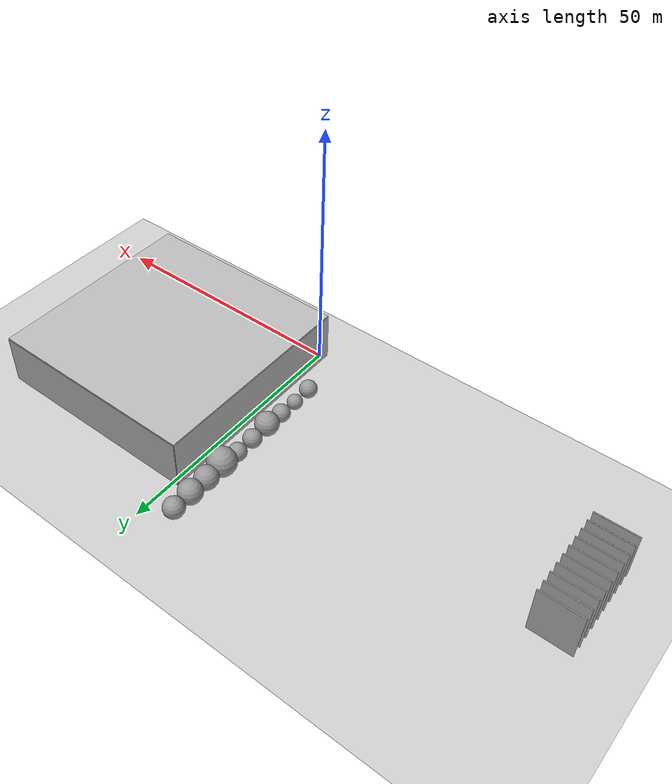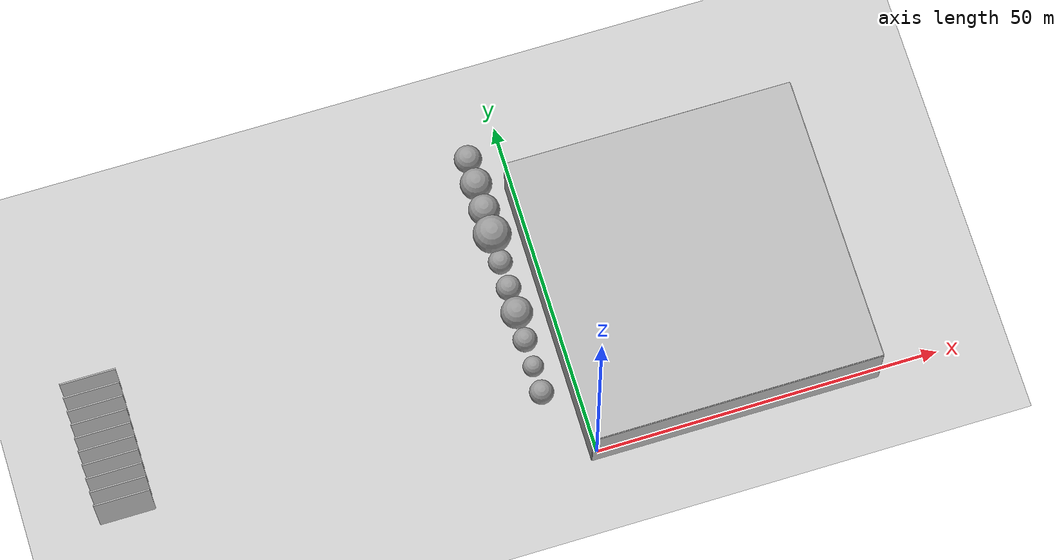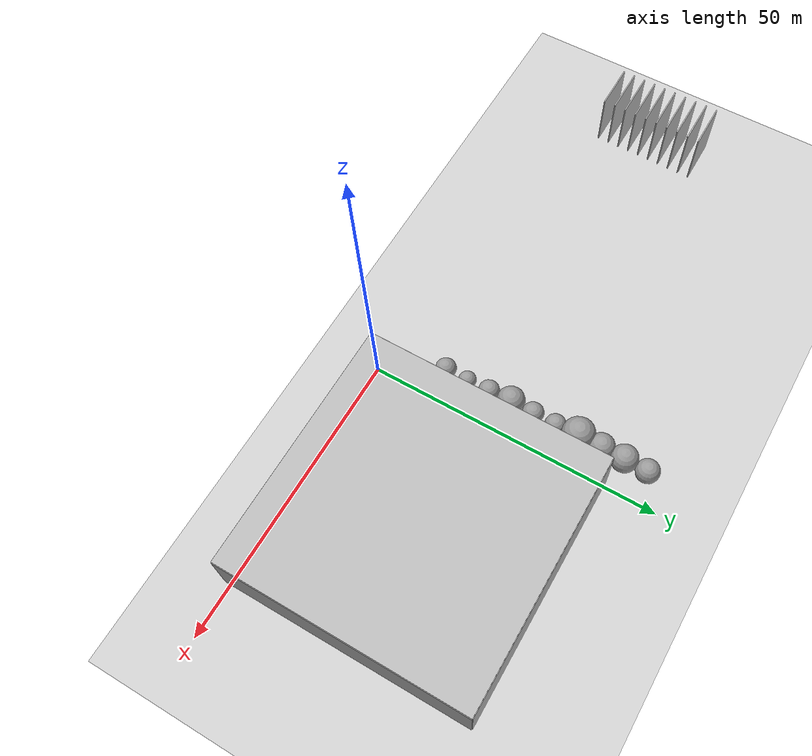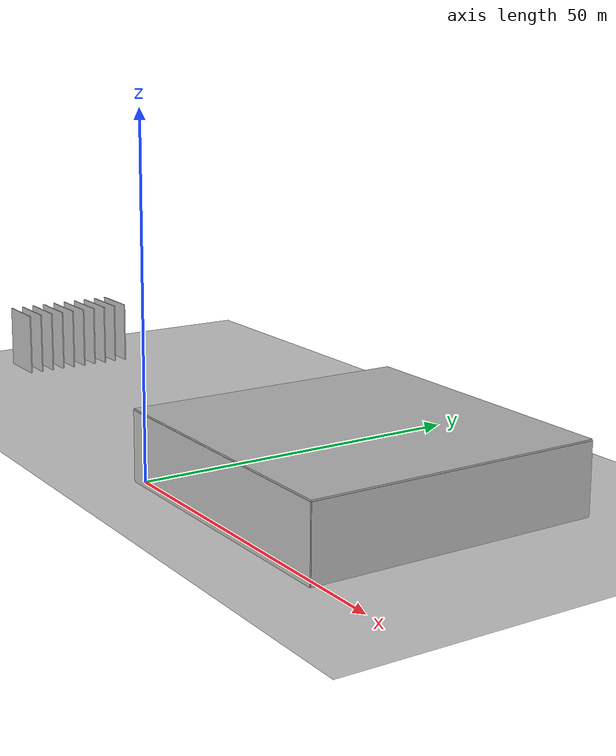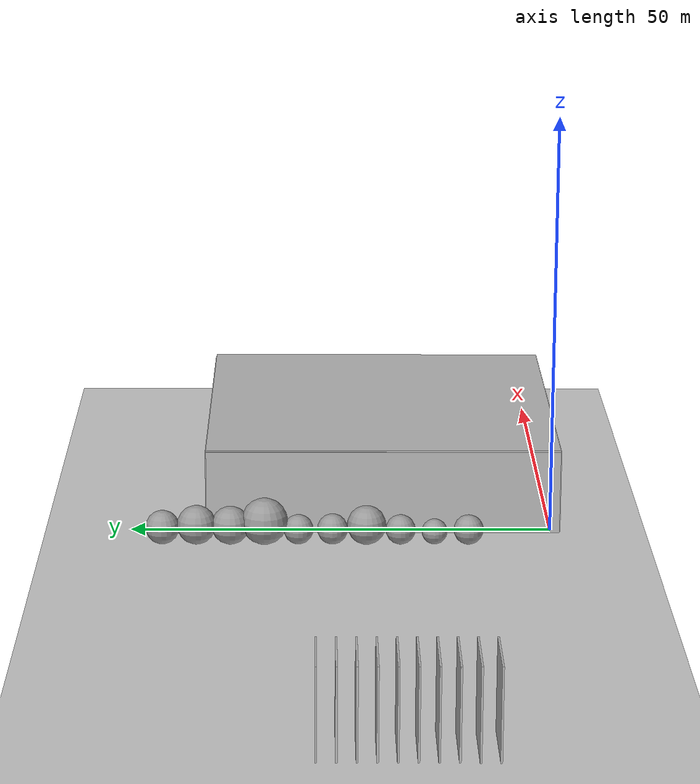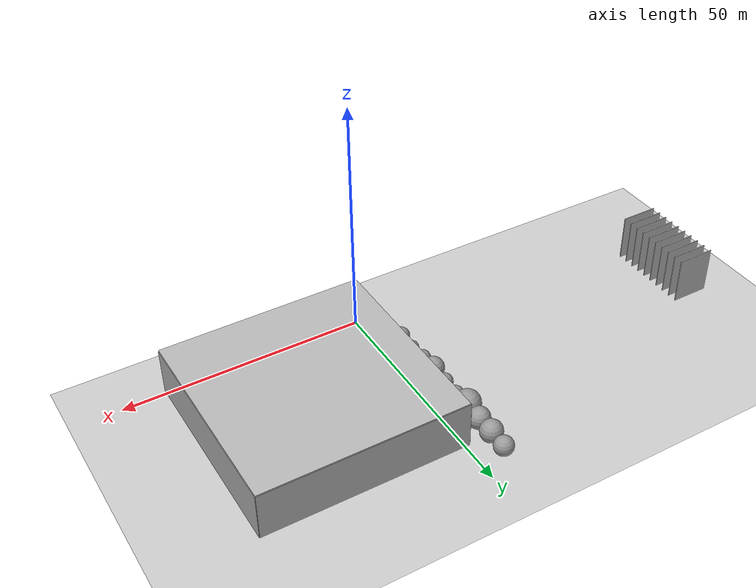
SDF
<sdf version="1.6">
 <world name="default">
  <model name="ground_plane">
   <static>1</static>
   <link name="link">
    <collision name="collision">
     <geometry><plane><normal>0 0 1</normal><size>1000 1000</size></plane></geometry>
     <surface>
      <contact><collide_bitmask>65535</collide_bitmask></contact>
      <friction><ode><mu>100</mu><mu2>50</mu2></ode></friction>
     </surface>
    </collision>
    <visual name="visual">
     <cast_shadows>0</cast_shadows>
     <geometry><plane><normal>0 0 1</normal><size>1000 1000</size></plane></geometry>
     <material>
      <script><uri>file://media/materials/scripts/gazebo.material</uri><name>Gazebo/Grey</name></script>
     </material>
    </visual>
   </link>
  </model>
  <light name="sun" type="directional">
   <pose>0 0 10 0 -0 0</pose>
   <diffuse>0.8 0.8 0.8 1</diffuse>
   <specular>0.2 0.2 0.2 1</specular>
   <attenuation>
    <range>1000</range>
    <constant>0.9</constant>
    <linear>0.01</linear>
    <quadratic>0.001</quadratic>
   </attenuation>
   <direction>-0.5 0.1 -0.9</direction>
  </light>
  <scene><shadows>0</shadows><ambient>0.4 0.4 0.4 1</ambient><background>0.7 0.7 0.7 1</background></scene>
  <plugin name="ros_interface_plugin" filename="librotors_gazebo_ros_interface_plugin.so"/>
  <physics name="default_physics" default="0" type="ode">
   <max_step_size>0.005</max_step_size>
   <real_time_factor>10</real_time_factor>
   <real_time_update_rate>600</real_time_update_rate>
   <ode>
    <solver>
     <type>quick</type>
     <iters>1000</iters>
     <sor>1.3</sor>
     <use_dynamic_moi_rescaling>0</use_dynamic_moi_rescaling>
    </solver>
    <constraints>
     <cfm>0</cfm>
     <erp>0.2</erp>
     <contact_max_correcting_vel>100</contact_max_correcting_vel>
     <contact_surface_layer>0.001</contact_surface_layer>
    </constraints>
   </ode>
  </physics>
  <gravity>0 0 -9.8</gravity>
  <magnetic_field>6e-06 2.3e-05 -4.2e-05</magnetic_field>
  <atmosphere type="adiabatic"/>
  <audio><device>default</device></audio>
  <spherical_coordinates>
   <surface_model>EARTH_WGS84</surface_model>
   <latitude_deg>0</latitude_deg>
   <longitude_deg>0</longitude_deg>
   <elevation>0</elevation>
   <heading_deg>0</heading_deg>
  </spherical_coordinates>
  <model name="wall_top">
   <static>1</static>
   <link name="link">
    <pose>0 0 0.1 0 0 0</pose>
    <collision name="collision"><geometry><box><size>42.0 42.0 0.2</size></box></geometry></collision>
    <visual name="visual">
     <cast_shadows>0</cast_shadows>
     <geometry><box><size>42.0 42.0 0.2</size></box></geometry>
    </visual>
   </link>
   <pose>20.0 20.0 10.0 0 0 0</pose>
  </model>
  <model name="unit_sphere_0">
   <pose>-5 10 1.75 0 -0 0</pose>
   <static>1</static>
   <link name="link">
    <inertial>
     <mass>1</mass>
     <inertia><ixx>0.1</ixx><ixy>0</ixy><ixz>0</ixz><iyy>0.1</iyy><iyz>0</iyz><izz>0.1</izz></inertia>
    </inertial>
    <collision name="collision"><geometry><sphere><radius>1.75</radius></sphere></geometry></collision>
    <visual name="visual">
     <geometry><sphere><radius>1.75</radius></sphere></geometry>
     <material>
      <script><name>Gazebo/Grey</name><uri>file://media/materials/scripts/gazebo.material</uri></script>
     </material>
    </visual>
   </link>
  </model>
  <model name="unit_sphere_1">
   <pose>-5 14 1.5 0 -0 0</pose>
   <static>1</static>
   <link name="link">
    <inertial>
     <mass>1</mass>
     <inertia><ixx>0.1</ixx><ixy>0</ixy><ixz>0</ixz><iyy>0.1</iyy><iyz>0</iyz><izz>0.1</izz></inertia>
    </inertial>
    <collision name="collision"><geometry><sphere><radius>1.5</radius></sphere></geometry></collision>
    <visual name="visual">
     <geometry><sphere><radius>1.5</radius></sphere></geometry>
     <material>
      <script><name>Gazebo/Grey</name><uri>file://media/materials/scripts/gazebo.material</uri></script>
     </material>
    </visual>
   </link>
  </model>
  <model name="unit_sphere_2">
   <pose>-5 18 1.75 0 -0 0</pose>
   <static>1</static>
   <link name="link">
    <inertial>
     <mass>1</mass>
     <inertia><ixx>0.1</ixx><ixy>0</ixy><ixz>0</ixz><iyy>0.1</iyy><iyz>0</iyz><izz>0.1</izz></inertia>
    </inertial>
    <collision name="collision"><geometry><sphere><radius>1.75</radius></sphere></geometry></collision>
    <visual name="visual">
     <geometry><sphere><radius>1.75</radius></sphere></geometry>
     <material>
      <script><name>Gazebo/Grey</name><uri>file://media/materials/scripts/gazebo.material</uri></script>
     </material>
    </visual>
   </link>
  </model>
  <model name="unit_sphere_3">
   <pose>-5 22 2.3 0 -0 0</pose>
   <static>1</static>
   <link name="link">
    <inertial>
     <mass>1</mass>
     <inertia><ixx>0.1</ixx><ixy>0</ixy><ixz>0</ixz><iyy>0.1</iyy><iyz>0</iyz><izz>0.1</izz></inertia>
    </inertial>
    <collision name="collision"><geometry><sphere><radius>2.3</radius></sphere></geometry></collision>
    <visual name="visual">
     <geometry><sphere><radius>2.3</radius></sphere></geometry>
     <material>
      <script><name>Gazebo/Grey</name><uri>file://media/materials/scripts/gazebo.material</uri></script>
     </material>
    </visual>
   </link>
  </model>
  <model name="unit_sphere_4">
   <pose>-5 26 1.8 0 -0 0</pose>
   <static>1</static>
   <link name="link">
    <inertial>
     <mass>1</mass>
     <inertia><ixx>0.1</ixx><ixy>0</ixy><ixz>0</ixz><iyy>0.1</iyy><iyz>0</iyz><izz>0.1</izz></inertia>
    </inertial>
    <collision name="collision"><geometry><sphere><radius>1.8</radius></sphere></geometry></collision>
    <visual name="visual">
     <geometry><sphere><radius>1.8</radius></sphere></geometry>
     <material>
      <script><name>Gazebo/Grey</name><uri>file://media/materials/scripts/gazebo.material</uri></script>
     </material>
    </visual>
   </link>
  </model>
  <model name="unit_sphere_5">
   <pose>-5 30 1.75 0 -0 0</pose>
   <static>1</static>
   <link name="link">
    <inertial>
     <mass>1</mass>
     <inertia><ixx>0.1</ixx><ixy>0</ixy><ixz>0</ixz><iyy>0.1</iyy><iyz>0</iyz><izz>0.1</izz></inertia>
    </inertial>
    <collision name="collision"><geometry><sphere><radius>1.75</radius></sphere></geometry></collision>
    <visual name="visual">
     <geometry><sphere><radius>1.75</radius></sphere></geometry>
     <material>
      <script><name>Gazebo/Grey</name><uri>file://media/materials/scripts/gazebo.material</uri></script>
     </material>
    </visual>
   </link>
  </model>
  <model name="unit_sphere_6">
   <pose>-5 34 2.75 0 -0 0</pose>
   <static>1</static>
   <link name="link">
    <inertial>
     <mass>1</mass>
     <inertia><ixx>0.1</ixx><ixy>0</ixy><ixz>0</ixz><iyy>0.1</iyy><iyz>0</iyz><izz>0.1</izz></inertia>
    </inertial>
    <collision name="collision"><geometry><sphere><radius>2.75</radius></sphere></geometry></collision>
    <visual name="visual">
     <geometry><sphere><radius>2.75</radius></sphere></geometry>
     <material>
      <script><name>Gazebo/Grey</name><uri>file://media/materials/scripts/gazebo.material</uri></script>
     </material>
    </visual>
   </link>
  </model>
  <model name="unit_sphere_7">
   <pose>-5 38 2.25 0 -0 0</pose>
   <static>1</static>
   <link name="link">
    <inertial>
     <mass>1</mass>
     <inertia><ixx>0.1</ixx><ixy>0</ixy><ixz>0</ixz><iyy>0.1</iyy><iyz>0</iyz><izz>0.1</izz></inertia>
    </inertial>
    <collision name="collision"><geometry><sphere><radius>2.25</radius></sphere></geometry></collision>
    <visual name="visual">
     <geometry><sphere><radius>2.25</radius></sphere></geometry>
     <material>
      <script><name>Gazebo/Grey</name><uri>file://media/materials/scripts/gazebo.material</uri></script>
     </material>
    </visual>
   </link>
  </model>
  <model name="unit_sphere_8">
   <pose>-5 42 2.3 0 -0 0</pose>
   <static>1</static>
   <link name="link">
    <inertial>
     <mass>1</mass>
     <inertia><ixx>0.1</ixx><ixy>0</ixy><ixz>0</ixz><iyy>0.1</iyy><iyz>0</iyz><izz>0.1</izz></inertia>
    </inertial>
    <collision name="collision"><geometry><sphere><radius>2.3</radius></sphere></geometry></collision>
    <visual name="visual">
     <geometry><sphere><radius>2.3</radius></sphere></geometry>
     <material>
      <script><name>Gazebo/Grey</name><uri>file://media/materials/scripts/gazebo.material</uri></script>
     </material>
    </visual>
   </link>
  </model>
  <model name="unit_sphere_9">
   <pose>-5 46 2 0 -0 0</pose>
   <static>1</static>
   <link name="link">
    <inertial>
     <mass>1</mass>
     <inertia><ixx>0.1</ixx><ixy>0</ixy><ixz>0</ixz><iyy>0.1</iyy><iyz>0</iyz><izz>0.1</izz></inertia>
    </inertial>
    <collision name="collision"><geometry><sphere><radius>2</radius></sphere></geometry></collision>
    <visual name="visual">
     <geometry><sphere><radius>2</radius></sphere></geometry>
     <material>
      <script><name>Gazebo/Grey</name><uri>file://media/materials/scripts/gazebo.material</uri></script>
     </material>
    </visual>
   </link>
  </model>
  <model name="grey_wall_boundary_0">
   <static>1</static>
   <link name="link">
    <pose>0 0 5 0 -0 0</pose>
    <collision name="collision"><geometry><box><size>42 0.2 10</size></box></geometry></collision>
    <visual name="visual">
     <cast_shadows>0</cast_shadows>
     <geometry><box><size>42 0.2 10</size></box></geometry>
    </visual>
   </link>
   <pose>20 -1 0 0 -0 0</pose>
  </model>
  <model name="grey_wall_boundary_1">
   <static>1</static>
   <link name="link">
    <pose>0 0 5 0 -0 1.5708</pose>
    <collision name="collision"><geometry><box><size>42 0.2 10</size></box></geometry></collision>
    <visual name="visual">
     <cast_shadows>0</cast_shadows>
     <geometry><box><size>42 0.2 10</size></box></geometry>
    </visual>
   </link>
   <pose>41 20 0 0 -0 0</pose>
  </model>
  <model name="grey_wall_boundary_2">
   <static>1</static>
   <link name="link">
    <pose>0 0 5 0 -0 0</pose>
    <collision name="collision"><geometry><box><size>42 0.2 10</size></box></geometry></collision>
    <visual name="visual">
     <cast_shadows>0</cast_shadows>
     <geometry><box><size>42 0.2 10</size></box></geometry>
    </visual>
   </link>
   <pose>20 41 0 0 -0 0</pose>
  </model>
  <model name="grey_wall_boundary_3">
   <static>1</static>
   <link name="link">
    <pose>0 0 5 0 -0 1.5708</pose>
    <collision name="collision"><geometry><box><size>42 0.2 10</size></box></geometry></collision>
    <visual name="visual">
     <cast_shadows>0</cast_shadows>
     <geometry><box><size>42 0.2 10</size></box></geometry>
    </visual>
   </link>
   <pose>-1 20 0 0 -0 0</pose>
  </model>
  <model name="grey_wall_obstacle_0">
   <static>1</static>
   <link name="link">
    <pose>0 0 5 0 -0 0</pose>
    <collision name="collision"><geometry><box><size>8 0.2 10</size></box></geometry></collision>
    <visual name="visual">
     <cast_shadows>0</cast_shadows>
     <geometry><box><size>8 0.2 10</size></box></geometry>
    </visual>
   </link>
   <pose>-65 10 0 0 -0 0</pose>
  </model>
  <model name="grey_wall_obstacle_1">
   <static>1</static>
   <link name="link">
    <pose>0 0 5 0 -0 0</pose>
    <collision name="collision"><geometry><box><size>8 0.2 10</size></box></geometry></collision>
    <visual name="visual">
     <cast_shadows>0</cast_shadows>
     <geometry><box><size>8 0.2 10</size></box></geometry>
    </visual>
   </link>
   <pose>-65 12 0 0 -0 0</pose>
  </model>
  <model name="grey_wall_obstacle_2">
   <static>1</static>
   <link name="link">
    <pose>0 0 5 0 -0 0</pose>
    <collision name="collision"><geometry><box><size>8 0.2 10</size></box></geometry></collision>
    <visual name="visual">
     <cast_shadows>0</cast_shadows>
     <geometry><box><size>8 0.2 10</size></box></geometry>
    </visual>
   </link>
   <pose>-65 14 0 0 -0 0</pose>
  </model>
  <model name="grey_wall_obstacle_3">
   <static>1</static>
   <link name="link">
    <pose>0 0 5 0 -0 0</pose>
    <collision name="collision"><geometry><box><size>8 0.2 10</size></box></geometry></collision>
    <visual name="visual">
     <cast_shadows>0</cast_shadows>
     <geometry><box><size>8 0.2 10</size></box></geometry>
    </visual>
   </link>
   <pose>-65 16 0 0 -0 0</pose>
  </model>
  <model name="grey_wall_obstacle_4">
   <static>1</static>
   <link name="link">
    <pose>0 0 5 0 -0 0</pose>
    <collision name="collision"><geometry><box><size>8 0.2 10</size></box></geometry></collision>
    <visual name="visual">
     <cast_shadows>0</cast_shadows>
     <geometry><box><size>8 0.2 10</size></box></geometry>
    </visual>
   </link>
   <pose>-65 18 0 0 -0 0</pose>
  </model>
  <model name="grey_wall_obstacle_5">
   <static>1</static>
   <link name="link">
    <pose>0 0 5 0 -0 0</pose>
    <collision name="collision"><geometry><box><size>8 0.2 10</size></box></geometry></collision>
    <visual name="visual">
     <cast_shadows>0</cast_shadows>
     <geometry><box><size>8 0.2 10</size></box></geometry>
    </visual>
   </link>
   <pose>-65 20 0 0 -0 0</pose>
  </model>
  <model name="grey_wall_obstacle_6">
   <static>1</static>
   <link name="link">
    <pose>0 0 5 0 -0 0</pose>
    <collision name="collision"><geometry><box><size>8 0.2 10</size></box></geometry></collision>
    <visual name="visual">
     <cast_shadows>0</cast_shadows>
     <geometry><box><size>8 0.2 10</size></box></geometry>
    </visual>
   </link>
   <pose>-65 22 0 0 -0 0</pose>
  </model>
  <model name="grey_wall_obstacle_7">
   <static>1</static>
   <link name="link">
    <pose>0 0 5 0 -0 0</pose>
    <collision name="collision"><geometry><box><size>8 0.2 10</size></box></geometry></collision>
    <visual name="visual">
     <cast_shadows>0</cast_shadows>
     <geometry><box><size>8 0.2 10</size></box></geometry>
    </visual>
   </link>
   <pose>-65 24 0 0 -0 0</pose>
  </model>
  <model name="grey_wall_obstacle_8">
   <static>1</static>
   <link name="link">
    <pose>0 0 5 0 -0 0</pose>
    <collision name="collision"><geometry><box><size>8 0.2 10</size></box></geometry></collision>
    <visual name="visual">
     <cast_shadows>0</cast_shadows>
     <geometry><box><size>8 0.2 10</size></box></geometry>
    </visual>
   </link>
   <pose>-65 26 0 0 -0 0</pose>
  </model>
  <model name="grey_wall_obstacle_9">
   <static>1</static>
   <link name="link">
    <pose>0 0 5 0 -0 0</pose>
    <collision name="collision"><geometry><box><size>8 0.2 10</size></box></geometry></collision>
    <visual name="visual">
     <cast_shadows>0</cast_shadows>
     <geometry><box><size>8 0.2 10</size></box></geometry>
    </visual>
   </link>
   <pose>-65 28 0 0 -0 0</pose>
  </model>
 </world>
</sdf>
